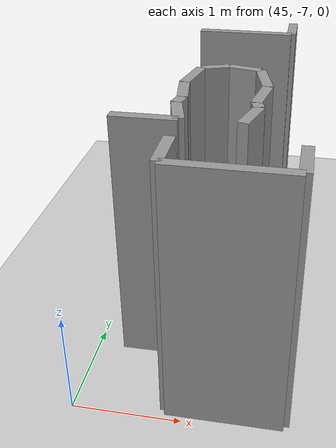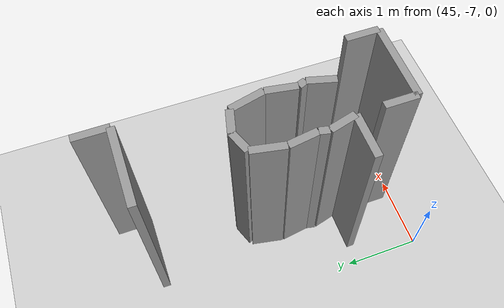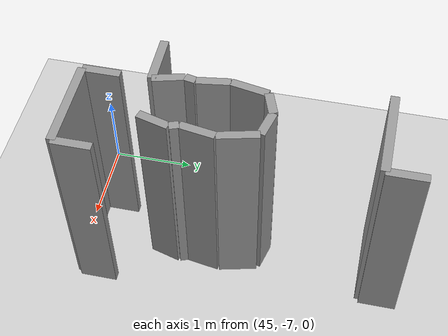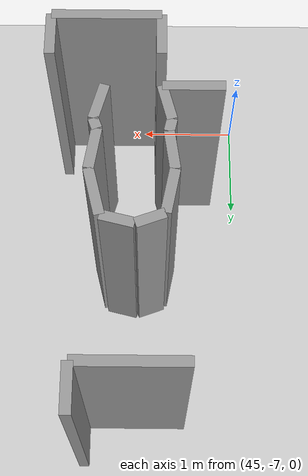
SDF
<sdf version="1.6">
 <world name="default">
  <model name="ground_plane">
   <static>1</static>
   <link name="link">
    <collision name="collision">
     <geometry><plane><normal>0 0 1</normal><size>100 100</size></plane></geometry>
     <surface><friction><ode><mu>100</mu><mu2>50</mu2></ode></friction></surface>
    </collision>
    <visual name="visual">
     <cast_shadows>0</cast_shadows>
     <geometry><plane><normal>0 0 1</normal><size>100 100</size></plane></geometry>
     <material>
      <script><uri>file://media/materials/scripts/gazebo.material</uri><name>Gazebo/Grey</name></script>
     </material>
    </visual>
   </link>
  </model>
  <model name="0510034689_Layout1">
   <static>1</static>
   <link name="Wall_328">
    <collision name="Wall_328_Collision">
     <geometry><box><size>0.435433167799 0.1 2.5</size></box></geometry>
     <pose>0.217716583899 0 1.25 0 0 0</pose>
    </collision>
    <visual name="Wall_328_Visual">
     <pose>0.217716583899 0 1.25 0 0 0</pose>
     <geometry><box><size>0.435433167799 0.1 2.5</size></box></geometry>
     <material>
      <script><uri>file://media/materials/scripts/gazebo.material</uri><name>Gazebo/Grey</name></script>
      <ambient>1 1 1 1</ambient>
     </material>
    </visual>
    <pose>102.239987004 -18.8019305769 0 0 0 -1.57079632679</pose>
   </link>
   <link name="Wall_329">
    <collision name="Wall_329_Collision">
     <geometry><box><size>1.05209587906 0.1 2.5</size></box></geometry>
     <pose>0.526047939529 0 1.25 0 0 0</pose>
    </collision>
    <visual name="Wall_329_Visual">
     <pose>0.526047939529 0 1.25 0 0 0</pose>
     <geometry><box><size>1.05209587906 0.1 2.5</size></box></geometry>
     <material>
      <script><uri>file://media/materials/scripts/gazebo.material</uri><name>Gazebo/Grey</name></script>
      <ambient>1 1 1 1</ambient>
     </material>
    </visual>
    <pose>102.239987004 -19.2373637447 0 0 0 0.0</pose>
   </link>
   <link name="Wall_330">
    <collision name="Wall_330_Collision">
     <geometry><box><size>0.442667120164 0.1 2.5</size></box></geometry>
     <pose>0.221333560082 0 1.25 0 0 0</pose>
    </collision>
    <visual name="Wall_330_Visual">
     <pose>0.221333560082 0 1.25 0 0 0</pose>
     <geometry><box><size>0.442667120164 0.1 2.5</size></box></geometry>
     <material>
      <script><uri>file://media/materials/scripts/gazebo.material</uri><name>Gazebo/Grey</name></script>
      <ambient>1 1 1 1</ambient>
     </material>
    </visual>
    <pose>103.292082883 -19.2373637447 0 0 0 1.57079632679</pose>
   </link>
   <link name="Wall_345">
    <collision name="Wall_345_Collision">
     <geometry><box><size>1.03521665687 0.1 2.5</size></box></geometry>
     <pose>0.517608328437 0 1.25 0 0 0</pose>
    </collision>
    <visual name="Wall_345_Visual">
     <pose>0.517608328437 0 1.25 0 0 0</pose>
     <geometry><box><size>1.03521665687 0.1 2.5</size></box></geometry>
     <material>
      <script><uri>file://media/materials/scripts/gazebo.material</uri><name>Gazebo/Grey</name></script>
      <ambient>1 1 1 1</ambient>
     </material>
    </visual>
    <pose>101.96293932 -15.8447669969 0 0 0 0.0</pose>
   </link>
   <link name="Wall_346">
    <collision name="Wall_346_Collision">
     <geometry><box><size>0.448505046634 0.1 2.5</size></box></geometry>
     <pose>0.224252523317 0 1.25 0 0 0</pose>
    </collision>
    <visual name="Wall_346_Visual">
     <pose>0.224252523317 0 1.25 0 0 0</pose>
     <geometry><box><size>0.448505046634 0.1 2.5</size></box></geometry>
     <material>
      <script><uri>file://media/materials/scripts/gazebo.material</uri><name>Gazebo/Grey</name></script>
      <ambient>1 1 1 1</ambient>
     </material>
    </visual>
    <pose>102.998155977 -15.8447669969 0 0 0 1.57079632679</pose>
   </link>
   <link name="Wall_351">
    <collision name="Wall_351_Collision">
     <geometry><box><size>0.370037387071 0.1 2.5</size></box></geometry>
     <pose>0.185018693536 0 1.25 0 0 0</pose>
    </collision>
    <visual name="Wall_351_Visual">
     <pose>0.185018693536 0 1.25 0 0 0</pose>
     <geometry><box><size>0.370037387071 0.1 2.5</size></box></geometry>
     <material>
      <script><uri>file://media/materials/scripts/gazebo.material</uri><name>Gazebo/Grey</name></script>
      <ambient>1 1 1 1</ambient>
     </material>
    </visual>
    <pose>102.762100689 -18.460284967 0 0 0 1.30069397782</pose>
   </link>
   <link name="Wall_352">
    <collision name="Wall_352_Collision">
     <geometry><box><size>0.111182900748 0.1 2.5</size></box></geometry>
     <pose>0.0555914503742 0 1.25 0 0 0</pose>
    </collision>
    <visual name="Wall_352_Visual">
     <pose>0.0555914503742 0 1.25 0 0 0</pose>
     <geometry><box><size>0.111182900748 0.1 2.5</size></box></geometry>
     <material>
      <script><uri>file://media/materials/scripts/gazebo.material</uri><name>Gazebo/Grey</name></script>
      <ambient>1 1 1 1</ambient>
     </material>
    </visual>
    <pose>102.860837793 -18.1036638065 0 0 0 1.92395583351</pose>
   </link>
   <link name="Wall_353">
    <collision name="Wall_353_Collision">
     <geometry><box><size>0.40591226499 0.1 2.5</size></box></geometry>
     <pose>0.202956132495 0 1.25 0 0 0</pose>
    </collision>
    <visual name="Wall_353_Visual">
     <pose>0.202956132495 0 1.25 0 0 0</pose>
     <geometry><box><size>0.40591226499 0.1 2.5</size></box></geometry>
     <material>
      <script><uri>file://media/materials/scripts/gazebo.material</uri><name>Gazebo/Grey</name></script>
      <ambient>1 1 1 1</ambient>
     </material>
    </visual>
    <pose>102.822383625 -17.9993425987 0 0 0 1.40780647409</pose>
   </link>
   <link name="Wall_354">
    <collision name="Wall_354_Collision">
     <geometry><box><size>0.463100714913 0.1 2.5</size></box></geometry>
     <pose>0.231550357456 0 1.25 0 0 0</pose>
    </collision>
    <visual name="Wall_354_Visual">
     <pose>0.231550357456 0 1.25 0 0 0</pose>
     <geometry><box><size>0.463100714913 0.1 2.5</size></box></geometry>
     <material>
      <script><uri>file://media/materials/scripts/gazebo.material</uri><name>Gazebo/Grey</name></script>
      <ambient>1 1 1 1</ambient>
     </material>
    </visual>
    <pose>102.888250665 -17.5988100783 0 0 0 1.81012533252</pose>
   </link>
   <link name="Wall_355">
    <collision name="Wall_355_Collision">
     <geometry><box><size>0.321998146616 0.1 2.5</size></box></geometry>
     <pose>0.160999073308 0 1.25 0 0 0</pose>
    </collision>
    <visual name="Wall_355_Visual">
     <pose>0.160999073308 0 1.25 0 0 0</pose>
     <geometry><box><size>0.321998146616 0.1 2.5</size></box></geometry>
     <material>
      <script><uri>file://media/materials/scripts/gazebo.material</uri><name>Gazebo/Grey</name></script>
      <ambient>1 1 1 1</ambient>
     </material>
    </visual>
    <pose>102.778472265 -17.1489090058 0 0 0 2.9008200645</pose>
   </link>
   <link name="Wall_356">
    <collision name="Wall_356_Collision">
     <geometry><box><size>0.286359245302 0.1 2.5</size></box></geometry>
     <pose>0.143179622651 0 1.25 0 0 0</pose>
    </collision>
    <visual name="Wall_356_Visual">
     <pose>0.143179622651 0 1.25 0 0 0</pose>
     <geometry><box><size>0.286359245302 0.1 2.5</size></box></geometry>
     <material>
      <script><uri>file://media/materials/scripts/gazebo.material</uri><name>Gazebo/Grey</name></script>
      <ambient>1 1 1 1</ambient>
     </material>
    </visual>
    <pose>102.465762465 -17.0721275815 0 0 0 -2.78956531922</pose>
   </link>
   <link name="Wall_357">
    <collision name="Wall_357_Collision">
     <geometry><box><size>0.435799654853 0.1 2.5</size></box></geometry>
     <pose>0.217899827426 0 1.25 0 0 0</pose>
    </collision>
    <visual name="Wall_357_Visual">
     <pose>0.217899827426 0 1.25 0 0 0</pose>
     <geometry><box><size>0.435799654853 0.1 2.5</size></box></geometry>
     <material>
      <script><uri>file://media/materials/scripts/gazebo.material</uri><name>Gazebo/Grey</name></script>
      <ambient>1 1 1 1</ambient>
     </material>
    </visual>
    <pose>102.196964024 -17.1708646857 0 0 0 -1.76093860132</pose>
   </link>
   <link name="Wall_358">
    <collision name="Wall_358_Collision">
     <geometry><box><size>0.382526190407 0.1 2.5</size></box></geometry>
     <pose>0.191263095204 0 1.25 0 0 0</pose>
    </collision>
    <visual name="Wall_358_Visual">
     <pose>0.191263095204 0 1.25 0 0 0</pose>
     <geometry><box><size>0.382526190407 0.1 2.5</size></box></geometry>
     <material>
      <script><uri>file://media/materials/scripts/gazebo.material</uri><name>Gazebo/Grey</name></script>
      <ambient>1 1 1 1</ambient>
     </material>
    </visual>
    <pose>102.114598497 -17.5988100783 0 0 0 -1.42697556603</pose>
   </link>
   <link name="Wall_359">
    <collision name="Wall_359_Collision">
     <geometry><box><size>0.129218102231 0.1 2.5</size></box></geometry>
     <pose>0.0646090511157 0 1.25 0 0 0</pose>
    </collision>
    <visual name="Wall_359_Visual">
     <pose>0.0646090511157 0 1.25 0 0 0</pose>
     <geometry><box><size>0.129218102231 0.1 2.5</size></box></geometry>
     <material>
      <script><uri>file://media/materials/scripts/gazebo.material</uri><name>Gazebo/Grey</name></script>
      <ambient>1 1 1 1</ambient>
     </material>
    </visual>
    <pose>102.169424241 -17.9773869187 0 0 0 -1.78456491773</pose>
   </link>
   <link name="Wall_360">
    <collision name="Wall_360_Collision">
     <geometry><box><size>0.363219158766 0.1 2.5</size></box></geometry>
     <pose>0.181609579383 0 1.25 0 0 0</pose>
    </collision>
    <visual name="Wall_360_Visual">
     <pose>0.181609579383 0 1.25 0 0 0</pose>
     <geometry><box><size>0.363219158766 0.1 2.5</size></box></geometry>
     <material>
      <script><uri>file://media/materials/scripts/gazebo.material</uri><name>Gazebo/Grey</name></script>
      <ambient>1 1 1 1</ambient>
     </material>
    </visual>
    <pose>102.142011369 -18.1036638065 0 0 0 -1.3110717201</pose>
   </link>
   <link name="Wall_361">
    <collision name="Wall_361_Collision">
     <geometry><box><size>0.587363936992 0.1 2.5</size></box></geometry>
     <pose>0.293681968496 0 1.25 0 0 0</pose>
    </collision>
    <visual name="Wall_361_Visual">
     <pose>0.293681968496 0 1.25 0 0 0</pose>
     <geometry><box><size>0.587363936992 0.1 2.5</size></box></geometry>
     <material>
      <script><uri>file://media/materials/scripts/gazebo.material</uri><name>Gazebo/Grey</name></script>
      <ambient>1 1 1 1</ambient>
     </material>
    </visual>
    <pose>102.235291281 -18.4547008634 0 0 0 -3.13381407236</pose>
   </link>
   <pose>-56.4 12.3396063334 0 0 0 0</pose>
  </model>
 </world>
</sdf>
